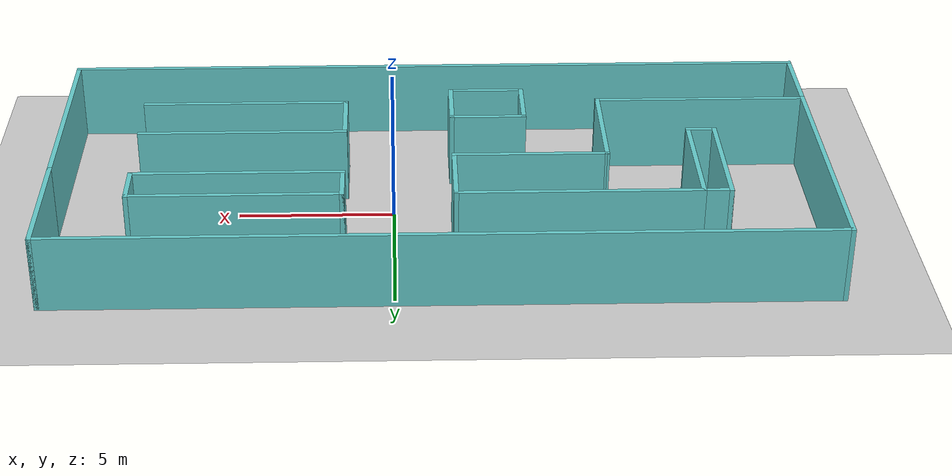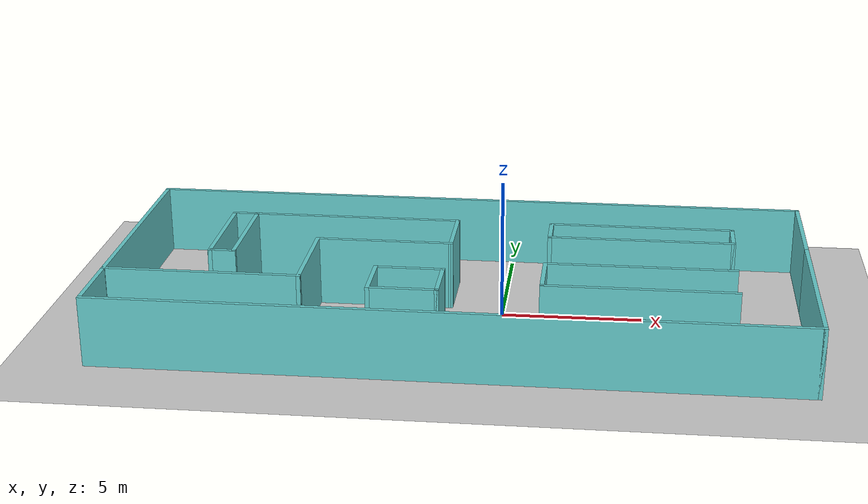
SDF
<sdf version='1.8'>
  <world name='default'>
    <physics name='1ms' type='ignored'>
      <max_step_size>0.001</max_step_size>
      <real_time_factor>1</real_time_factor>
      <real_time_update_rate>1000</real_time_update_rate>
    </physics>
    <light name='sun' type='directional'>
      <cast_shadows>1</cast_shadows>
      <pose>0 0 10 0 -0 0</pose>
      <diffuse>0.8 0.8 0.8 1</diffuse>
      <specular>0.2 0.2 0.2 1</specular>
      <attenuation>
        <range>1000</range>
        <constant>0.90000000000000002</constant>
        <linear>0.01</linear>
        <quadratic>0.001</quadratic>
      </attenuation>
      <direction>-0.5 0.1 -0.9</direction>
      <spot>
        <inner_angle>0</inner_angle>
        <outer_angle>0</outer_angle>
        <falloff>0</falloff>
      </spot>
    </light>
    <gravity>0 0 -9.8</gravity>
    <magnetic_field>6e-06 2.3e-05 -4.2e-05</magnetic_field>
    <atmosphere type='adiabatic'/>
    <scene>
      <ambient>0.4 0.4 0.4 1</ambient>
      <background>0.7 0.7 0.7 1</background>
      <shadows>1</shadows>
    </scene>
    <plugin name='__default__' filename='__default__'/>
    <model name='ground_plane'>
      <static>1</static>
      <link name='link'>
        <collision name='collision'>
          <geometry>
            <plane>
              <normal>0 0 1</normal>
              <size>100 100</size>
            </plane>
          </geometry>
          <surface>
            <friction>
              <ode/>
            </friction>
            <bounce/>
            <contact/>
          </surface>
        </collision>
        <visual name='visual'>
          <geometry>
            <plane>
              <normal>0 0 1</normal>
              <size>100 100</size>
            </plane>
          </geometry>
          <material>
            <ambient>0.8 0.8 0.8 1</ambient>
            <diffuse>0.8 0.8 0.8 1</diffuse>
            <specular>0.8 0.8 0.8 1</specular>
          </material>
          <plugin name='__default__' filename='__default__'/>
        </visual>
      </link>
      <plugin name='__default__' filename='__default__'/>
      <pose>0 0 0 0 -0 0</pose>
    </model>
    <model name='building2'>
      <pose>-1.435 -0.245 0 0 0 0</pose>
      <link name='Wall_0'>
        <collision name='Wall_0_Collision'>
          <geometry>
            <box>
              <size>5 0.15 2.5</size>
            </box>
          </geometry>
          <pose>0 0 1.25 0 -0 0</pose>
          <max_contacts>10</max_contacts>
          <surface>
            <contact>
              <ode/>
            </contact>
            <bounce/>
            <friction>
              <torsional>
                <ode/>
              </torsional>
              <ode/>
            </friction>
          </surface>
        </collision>
        <visual name='Wall_0_Visual'>
          <pose>0 0 1.25 0 -0 0</pose>
          <geometry>
            <box>
              <size>5 0.15 2.5</size>
            </box>
          </geometry>
          <material>
            <diffuse>0.4 0.8 0.8 1</diffuse>
            <specular>0.8 0.8 0.8 1</specular>
            <ambient>1 1 1 1</ambient>
          </material>
          <meta>
            <layer>0</layer>
          </meta>
          <plugin name='__default__' filename='__default__'/>
        </visual>
        <pose>-2.9 0.726036 0 0 -0 -0.000427</pose>
        <self_collide>0</self_collide>
        <enable_wind>0</enable_wind>
        <kinematic>0</kinematic>
      </link>
      <link name='Wall_10'>
        <collision name='Wall_10_Collision'>
          <geometry>
            <box>
              <size>2.5 0.15 2.5</size>
            </box>
          </geometry>
          <pose>0 0 1.25 0 -0 0</pose>
          <max_contacts>10</max_contacts>
          <surface>
            <contact>
              <ode/>
            </contact>
            <bounce/>
            <friction>
              <torsional>
                <ode/>
              </torsional>
              <ode/>
            </friction>
          </surface>
        </collision>
        <visual name='Wall_10_Visual'>
          <pose>0 0 1.25 0 -0 0</pose>
          <geometry>
            <box>
              <size>2.5 0.15 2.5</size>
            </box>
          </geometry>
          <material>
            <diffuse>0.4 0.8 0.8 1</diffuse>
            <specular>0.8 0.8 0.8 1</specular>
            <ambient>1 1 1 1</ambient>
          </material>
          <meta>
            <layer>0</layer>
          </meta>
          <plugin name='__default__' filename='__default__'/>
        </visual>
        <pose>-0.475 1.9 0 0 -0 1.5708</pose>
        <self_collide>0</self_collide>
        <enable_wind>0</enable_wind>
        <kinematic>0</kinematic>
      </link>
      <link name='Wall_11'>
        <collision name='Wall_11_Collision'>
          <geometry>
            <box>
              <size>7.75 0.15 2.5</size>
            </box>
          </geometry>
          <pose>0 0 1.25 0 -0 0</pose>
          <max_contacts>10</max_contacts>
          <surface>
            <contact>
              <ode/>
            </contact>
            <bounce/>
            <friction>
              <torsional>
                <ode/>
              </torsional>
              <ode/>
            </friction>
          </surface>
        </collision>
        <visual name='Wall_11_Visual'>
          <pose>0 0 1.25 0 -0 0</pose>
          <geometry>
            <box>
              <size>7.75 0.15 2.5</size>
            </box>
          </geometry>
          <material>
            <diffuse>0.4 0.8 0.8 1</diffuse>
            <specular>0.8 0.8 0.8 1</specular>
            <ambient>1 1 1 1</ambient>
          </material>
          <meta>
            <layer>0</layer>
          </meta>
          <plugin name='__default__' filename='__default__'/>
        </visual>
        <pose>-4.275 3.075 0 0 -0 3.14159</pose>
        <self_collide>0</self_collide>
        <enable_wind>0</enable_wind>
        <kinematic>0</kinematic>
      </link>
      <link name='Wall_12'>
        <collision name='Wall_12_Collision'>
          <geometry>
            <box>
              <size>4 0.15 2.5</size>
            </box>
          </geometry>
          <pose>0 0 1.25 0 -0 0</pose>
          <max_contacts>10</max_contacts>
          <surface>
            <contact>
              <ode/>
            </contact>
            <bounce/>
            <friction>
              <torsional>
                <ode/>
              </torsional>
              <ode/>
            </friction>
          </surface>
        </collision>
        <visual name='Wall_12_Visual'>
          <pose>0 0 1.25 0 -0 0</pose>
          <geometry>
            <box>
              <size>4 0.15 2.5</size>
            </box>
          </geometry>
          <material>
            <diffuse>0.4 0.8 0.8 1</diffuse>
            <specular>0.8 0.8 0.8 1</specular>
            <ambient>1 1 1 1</ambient>
          </material>
          <meta>
            <layer>0</layer>
          </meta>
          <plugin name='__default__' filename='__default__'/>
        </visual>
        <pose>-8.075 1.15 0 0 -0 -1.5708</pose>
        <self_collide>0</self_collide>
        <enable_wind>0</enable_wind>
        <kinematic>0</kinematic>
      </link>
      <link name='Wall_13'>
        <collision name='Wall_13_Collision'>
          <geometry>
            <box>
              <size>1 0.15 2.5</size>
            </box>
          </geometry>
          <pose>0 0 1.25 0 -0 0</pose>
          <max_contacts>10</max_contacts>
          <surface>
            <contact>
              <ode/>
            </contact>
            <bounce/>
            <friction>
              <torsional>
                <ode/>
              </torsional>
              <ode/>
            </friction>
          </surface>
        </collision>
        <visual name='Wall_13_Visual'>
          <pose>0 0 1.25 0 -0 0</pose>
          <geometry>
            <box>
              <size>1 0.15 2.5</size>
            </box>
          </geometry>
          <material>
            <diffuse>0.4 0.8 0.8 1</diffuse>
            <specular>0.8 0.8 0.8 1</specular>
            <ambient>1 1 1 1</ambient>
          </material>
          <meta>
            <layer>0</layer>
          </meta>
          <plugin name='__default__' filename='__default__'/>
        </visual>
        <pose>-8.5 -0.775 0 0 -0 3.14159</pose>
        <self_collide>0</self_collide>
        <enable_wind>0</enable_wind>
        <kinematic>0</kinematic>
      </link>
      <link name='Wall_14'>
        <collision name='Wall_14_Collision'>
          <geometry>
            <box>
              <size>4 0.15 2.5</size>
            </box>
          </geometry>
          <pose>0 0 1.25 0 -0 0</pose>
          <max_contacts>10</max_contacts>
          <surface>
            <contact>
              <ode/>
            </contact>
            <bounce/>
            <friction>
              <torsional>
                <ode/>
              </torsional>
              <ode/>
            </friction>
          </surface>
        </collision>
        <visual name='Wall_14_Visual'>
          <pose>0 0 1.25 0 -0 0</pose>
          <geometry>
            <box>
              <size>4 0.15 2.5</size>
            </box>
          </geometry>
          <material>
            <diffuse>0.4 0.8 0.8 1</diffuse>
            <specular>0.8 0.8 0.8 1</specular>
            <ambient>1 1 1 1</ambient>
          </material>
          <meta>
            <layer>0</layer>
          </meta>
          <plugin name='__default__' filename='__default__'/>
        </visual>
        <pose>-8.925 1.15 0 0 -0 1.5708</pose>
        <self_collide>0</self_collide>
        <enable_wind>0</enable_wind>
        <kinematic>0</kinematic>
      </link>
      <link name='Wall_15'>
        <collision name='Wall_15_Collision'>
          <geometry>
            <box>
              <size>1 0.15 2.5</size>
            </box>
          </geometry>
          <pose>0 0 1.25 0 -0 0</pose>
          <max_contacts>10</max_contacts>
          <surface>
            <contact>
              <ode/>
            </contact>
            <bounce/>
            <friction>
              <torsional>
                <ode/>
              </torsional>
              <ode/>
            </friction>
          </surface>
        </collision>
        <visual name='Wall_15_Visual'>
          <pose>0 0 1.25 0 -0 0</pose>
          <geometry>
            <box>
              <size>1 0.15 2.5</size>
            </box>
          </geometry>
          <material>
            <diffuse>0.4 0.8 0.8 1</diffuse>
            <specular>0.8 0.8 0.8 1</specular>
            <ambient>1 1 1 1</ambient>
          </material>
          <meta>
            <layer>0</layer>
          </meta>
          <plugin name='__default__' filename='__default__'/>
        </visual>
        <pose>-8.5 3.075 0 0 -0 0</pose>
        <self_collide>0</self_collide>
        <enable_wind>0</enable_wind>
        <kinematic>0</kinematic>
      </link>
      <link name='Wall_17'>
        <collision name='Wall_17_Collision'>
          <geometry>
            <box>
              <size>8.49793 0.15 2.5</size>
            </box>
          </geometry>
          <pose>0 0 1.25 0 -0 0</pose>
          <max_contacts>10</max_contacts>
          <surface>
            <contact>
              <ode/>
            </contact>
            <bounce/>
            <friction>
              <torsional>
                <ode/>
              </torsional>
              <ode/>
            </friction>
          </surface>
        </collision>
        <visual name='Wall_17_Visual'>
          <pose>0 0 1.25 0 -0 0</pose>
          <geometry>
            <box>
              <size>8.49793 0.15 2.5</size>
            </box>
          </geometry>
          <material>
            <diffuse>0.4 0.8 0.8 1</diffuse>
            <specular>0.8 0.8 0.8 1</specular>
            <ambient>1 1 1 1</ambient>
          </material>
          <meta>
            <layer>0</layer>
          </meta>
          <plugin name='__default__' filename='__default__'/>
        </visual>
        <pose>-12.175 1.30104 0 0 -0 1.5708</pose>
        <self_collide>0</self_collide>
        <enable_wind>0</enable_wind>
        <kinematic>0</kinematic>
      </link>
      <link name='Wall_18'>
        <collision name='Wall_18_Collision'>
          <geometry>
            <box>
              <size>24.5 0.15 2.5</size>
            </box>
          </geometry>
          <pose>0 0 1.25 0 -0 0</pose>
          <max_contacts>10</max_contacts>
          <surface>
            <contact>
              <ode/>
            </contact>
            <bounce/>
            <friction>
              <torsional>
                <ode/>
              </torsional>
              <ode/>
            </friction>
          </surface>
        </collision>
        <visual name='Wall_18_Visual'>
          <pose>0 0 1.25 0 -0 0</pose>
          <geometry>
            <box>
              <size>24.5 0.15 2.5</size>
            </box>
          </geometry>
          <material>
            <diffuse>0.4 0.8 0.8 1</diffuse>
            <specular>0.8 0.8 0.8 1</specular>
            <ambient>1 1 1 1</ambient>
          </material>
          <meta>
            <layer>0</layer>
          </meta>
          <plugin name='__default__' filename='__default__'/>
        </visual>
        <pose>0 5.475 0 0 -0 0</pose>
        <self_collide>0</self_collide>
        <enable_wind>0</enable_wind>
        <kinematic>0</kinematic>
      </link>
      <link name='Wall_19'>
        <collision name='Wall_19_Collision'>
          <geometry>
            <box>
              <size>4.25 0.15 2.5</size>
            </box>
          </geometry>
          <pose>0 0 1.25 0 -0 0</pose>
          <max_contacts>10</max_contacts>
          <surface>
            <contact>
              <ode/>
            </contact>
            <bounce/>
            <friction>
              <torsional>
                <ode/>
              </torsional>
              <ode/>
            </friction>
          </surface>
        </collision>
        <visual name='Wall_19_Visual'>
          <pose>0 0 1.25 0 -0 0</pose>
          <geometry>
            <box>
              <size>4.25 0.15 2.5</size>
            </box>
          </geometry>
          <material>
            <diffuse>0.4 0.8 0.8 1</diffuse>
            <specular>0.8 0.8 0.8 1</specular>
            <ambient>1 1 1 1</ambient>
          </material>
          <meta>
            <layer>0</layer>
          </meta>
          <plugin name='__default__' filename='__default__'/>
        </visual>
        <pose>12.175 3.425 0 0 -0 -1.5708</pose>
        <self_collide>0</self_collide>
        <enable_wind>0</enable_wind>
        <kinematic>0</kinematic>
      </link>
      <link name='Wall_22'>
        <collision name='Wall_22_Collision'>
          <geometry>
            <box>
              <size>2 0.15 2.5</size>
            </box>
          </geometry>
          <pose>0 0 1.25 0 -0 0</pose>
          <max_contacts>10</max_contacts>
          <surface>
            <contact>
              <ode/>
            </contact>
            <bounce/>
            <friction>
              <torsional>
                <ode/>
              </torsional>
              <ode/>
            </friction>
          </surface>
        </collision>
        <visual name='Wall_22_Visual'>
          <pose>0 0 1.25 0 -0 0</pose>
          <geometry>
            <box>
              <size>2 0.15 2.5</size>
            </box>
          </geometry>
          <material>
            <diffuse>0.4 0.8 0.8 1</diffuse>
            <specular>0.8 0.8 0.8 1</specular>
            <ambient>1 1 1 1</ambient>
          </material>
          <meta>
            <layer>0</layer>
          </meta>
          <plugin name='__default__' filename='__default__'/>
        </visual>
        <pose>-0.475 -2.7 0 0 -0 1.5708</pose>
        <self_collide>0</self_collide>
        <enable_wind>0</enable_wind>
        <kinematic>0</kinematic>
      </link>
      <link name='Wall_23'>
        <collision name='Wall_23_Collision'>
          <geometry>
            <box>
              <size>2.5 0.15 2.5</size>
            </box>
          </geometry>
          <pose>0 0 1.25 0 -0 0</pose>
          <max_contacts>10</max_contacts>
          <surface>
            <contact>
              <ode/>
            </contact>
            <bounce/>
            <friction>
              <torsional>
                <ode/>
              </torsional>
              <ode/>
            </friction>
          </surface>
        </collision>
        <visual name='Wall_23_Visual'>
          <pose>0 0 1.25 0 -0 0</pose>
          <geometry>
            <box>
              <size>2.5 0.15 2.5</size>
            </box>
          </geometry>
          <material>
            <diffuse>0.4 0.8 0.8 1</diffuse>
            <specular>0.8 0.8 0.8 1</specular>
            <ambient>1 1 1 1</ambient>
          </material>
          <meta>
            <layer>0</layer>
          </meta>
          <plugin name='__default__' filename='__default__'/>
        </visual>
        <pose>-1.65 -1.775 0 0 -0 3.14159</pose>
        <self_collide>0</self_collide>
        <enable_wind>0</enable_wind>
        <kinematic>0</kinematic>
      </link>
      <link name='Wall_24'>
        <collision name='Wall_24_Collision'>
          <geometry>
            <box>
              <size>2 0.15 2.5</size>
            </box>
          </geometry>
          <pose>0 0 1.25 0 -0 0</pose>
          <max_contacts>10</max_contacts>
          <surface>
            <contact>
              <ode/>
            </contact>
            <bounce/>
            <friction>
              <torsional>
                <ode/>
              </torsional>
              <ode/>
            </friction>
          </surface>
        </collision>
        <visual name='Wall_24_Visual'>
          <pose>0 0 1.25 0 -0 0</pose>
          <geometry>
            <box>
              <size>2 0.15 2.5</size>
            </box>
          </geometry>
          <material>
            <diffuse>0.4 0.8 0.8 1</diffuse>
            <specular>0.8 0.8 0.8 1</specular>
            <ambient>1 1 1 1</ambient>
          </material>
          <meta>
            <layer>0</layer>
          </meta>
          <plugin name='__default__' filename='__default__'/>
        </visual>
        <pose>-2.825 -2.7 0 0 -0 -1.5708</pose>
        <self_collide>0</self_collide>
        <enable_wind>0</enable_wind>
        <kinematic>0</kinematic>
      </link>
      <link name='Wall_26'>
        <collision name='Wall_26_Collision'>
          <geometry>
            <box>
              <size>2.5 0.15 2.5</size>
            </box>
          </geometry>
          <pose>0 0 1.25 0 -0 0</pose>
          <max_contacts>10</max_contacts>
          <surface>
            <contact>
              <ode/>
            </contact>
            <bounce/>
            <friction>
              <torsional>
                <ode/>
              </torsional>
              <ode/>
            </friction>
          </surface>
        </collision>
        <visual name='Wall_26_Visual'>
          <pose>0 0 1.25 0 -0 0</pose>
          <geometry>
            <box>
              <size>2.5 0.15 2.5</size>
            </box>
          </geometry>
          <material>
            <diffuse>0.4 0.8 0.8 1</diffuse>
            <specular>0.8 0.8 0.8 1</specular>
            <ambient>1 1 1 1</ambient>
          </material>
          <meta>
            <layer>0</layer>
          </meta>
          <plugin name='__default__' filename='__default__'/>
        </visual>
        <pose>-1.65 -3.625 0 0 -0 0</pose>
        <self_collide>0</self_collide>
        <enable_wind>0</enable_wind>
        <kinematic>0</kinematic>
      </link>
      <link name='Wall_3'>
        <collision name='Wall_3_Collision'>
          <geometry>
            <box>
              <size>3.75 0.15 2.5</size>
            </box>
          </geometry>
          <pose>0 0 1.25 0 -0 0</pose>
          <max_contacts>10</max_contacts>
          <surface>
            <contact>
              <ode/>
            </contact>
            <bounce/>
            <friction>
              <torsional>
                <ode/>
              </torsional>
              <ode/>
            </friction>
          </surface>
        </collision>
        <visual name='Wall_3_Visual'>
          <pose>0 0 1.25 0 -0 0</pose>
          <geometry>
            <box>
              <size>3.75 0.15 2.5</size>
            </box>
          </geometry>
          <material>
            <diffuse>0.4 0.8 0.8 1</diffuse>
            <specular>0.8 0.8 0.8 1</specular>
            <ambient>1 1 1 1</ambient>
          </material>
          <meta>
            <layer>0</layer>
          </meta>
          <plugin name='__default__' filename='__default__'/>
        </visual>
        <pose>-5.325 -1.07293 0 0 -0 -1.5708</pose>
        <self_collide>0</self_collide>
        <enable_wind>0</enable_wind>
        <kinematic>0</kinematic>
      </link>
      <link name='Wall_33'>
        <collision name='Wall_33_Collision'>
          <geometry>
            <box>
              <size>6.75 0.15 2.5</size>
            </box>
          </geometry>
          <pose>0 0 1.25 0 -0 0</pose>
          <max_contacts>10</max_contacts>
          <surface>
            <contact>
              <ode/>
            </contact>
            <bounce/>
            <friction>
              <torsional>
                <ode/>
              </torsional>
              <ode/>
            </friction>
          </surface>
        </collision>
        <visual name='Wall_33_Visual'>
          <pose>0 0 1.25 0 -0 0</pose>
          <geometry>
            <box>
              <size>6.75 0.15 2.5</size>
            </box>
          </geometry>
          <material>
            <diffuse>0.4 0.8 0.8 1</diffuse>
            <specular>0.8 0.8 0.8 1</specular>
            <ambient>1 1 1 1</ambient>
          </material>
          <meta>
            <layer>0</layer>
          </meta>
          <plugin name='__default__' filename='__default__'/>
        </visual>
        <pose>6.325 3.075 0 0 -0 0</pose>
        <self_collide>0</self_collide>
        <enable_wind>0</enable_wind>
        <kinematic>0</kinematic>
      </link>
      <link name='Wall_35'>
        <collision name='Wall_35_Collision'>
          <geometry>
            <box>
              <size>6.75 0.15 2.5</size>
            </box>
          </geometry>
          <pose>0 0 1.25 0 -0 0</pose>
          <max_contacts>10</max_contacts>
          <surface>
            <contact>
              <ode/>
            </contact>
            <bounce/>
            <friction>
              <torsional>
                <ode/>
              </torsional>
              <ode/>
            </friction>
          </surface>
        </collision>
        <visual name='Wall_35_Visual'>
          <pose>0 0 1.25 0 -0 0</pose>
          <geometry>
            <box>
              <size>6.75 0.15 2.5</size>
            </box>
          </geometry>
          <material>
            <diffuse>0.4 0.8 0.8 1</diffuse>
            <specular>0.8 0.8 0.8 1</specular>
            <ambient>1 1 1 1</ambient>
          </material>
          <meta>
            <layer>0</layer>
          </meta>
          <plugin name='__default__' filename='__default__'/>
        </visual>
        <pose>6.30977 -0.863638 0 0 -0 3.14159</pose>
        <self_collide>0</self_collide>
        <enable_wind>0</enable_wind>
        <kinematic>0</kinematic>
      </link>
      <link name='Wall_36'>
        <collision name='Wall_36_Collision'>
          <geometry>
            <box>
              <size>2.12547 0.15 2.5</size>
            </box>
          </geometry>
          <pose>0 0 1.25 0 -0 0</pose>
          <max_contacts>10</max_contacts>
          <surface>
            <contact>
              <ode/>
            </contact>
            <bounce/>
            <friction>
              <torsional>
                <ode/>
              </torsional>
              <ode/>
            </friction>
          </surface>
        </collision>
        <visual name='Wall_36_Visual'>
          <pose>0 0 1.25 0 -0 0</pose>
          <geometry>
            <box>
              <size>2.12547 0.15 2.5</size>
            </box>
          </geometry>
          <material>
            <diffuse>0.4 0.8 0.8 1</diffuse>
            <specular>0.8 0.8 0.8 1</specular>
            <ambient>1 1 1 1</ambient>
          </material>
          <meta>
            <layer>0</layer>
          </meta>
          <plugin name='__default__' filename='__default__'/>
        </visual>
        <pose>3.00977 -1.85137 0 0 -0 -1.5708</pose>
        <self_collide>0</self_collide>
        <enable_wind>0</enable_wind>
        <kinematic>0</kinematic>
      </link>
      <link name='Wall_37'>
        <collision name='Wall_37_Collision'>
          <geometry>
            <box>
              <size>6.75 0.15 2.5</size>
            </box>
          </geometry>
          <pose>0 0 1.25 0 -0 0</pose>
          <max_contacts>10</max_contacts>
          <surface>
            <contact>
              <ode/>
            </contact>
            <bounce/>
            <friction>
              <torsional>
                <ode/>
              </torsional>
              <ode/>
            </friction>
          </surface>
        </collision>
        <visual name='Wall_37_Visual'>
          <pose>0 0 1.25 0 -0 0</pose>
          <geometry>
            <box>
              <size>6.75 0.15 2.5</size>
            </box>
          </geometry>
          <material>
            <diffuse>0.4 0.8 0.8 1</diffuse>
            <specular>0.8 0.8 0.8 1</specular>
            <ambient>1 1 1 1</ambient>
          </material>
          <meta>
            <layer>0</layer>
          </meta>
          <plugin name='__default__' filename='__default__'/>
        </visual>
        <pose>6.30977 -2.86224 0 0 -0 0</pose>
        <self_collide>0</self_collide>
        <enable_wind>0</enable_wind>
        <kinematic>0</kinematic>
      </link>
      <link name='Wall_39'>
        <collision name='Wall_39_Collision'>
          <geometry>
            <box>
              <size>1.5 0.15 2.5</size>
            </box>
          </geometry>
          <pose>0 0 1.25 0 -0 0</pose>
          <max_contacts>10</max_contacts>
          <surface>
            <contact>
              <ode/>
            </contact>
            <bounce/>
            <friction>
              <torsional>
                <ode/>
              </torsional>
              <ode/>
            </friction>
          </surface>
        </collision>
        <visual name='Wall_39_Visual'>
          <pose>0 0 1.25 0 -0 0</pose>
          <geometry>
            <box>
              <size>1.5 0.15 2.5</size>
            </box>
          </geometry>
          <material>
            <diffuse>0.4 0.8 0.8 1</diffuse>
            <specular>0.8 0.8 0.8 1</specular>
            <ambient>1 1 1 1</ambient>
          </material>
          <meta>
            <layer>0</layer>
          </meta>
          <plugin name='__default__' filename='__default__'/>
        </visual>
        <pose>3.025 2.4 0 0 -0 -1.5708</pose>
        <self_collide>0</self_collide>
        <enable_wind>0</enable_wind>
        <kinematic>0</kinematic>
      </link>
      <link name='Wall_4'>
        <collision name='Wall_4_Collision'>
          <geometry>
            <box>
              <size>7 0.15 2.5</size>
            </box>
          </geometry>
          <pose>0 0 1.25 0 -0 0</pose>
          <max_contacts>10</max_contacts>
          <surface>
            <contact>
              <ode/>
            </contact>
            <bounce/>
            <friction>
              <torsional>
                <ode/>
              </torsional>
              <ode/>
            </friction>
          </surface>
        </collision>
        <visual name='Wall_4_Visual'>
          <pose>0 0 1.25 0 -0 0</pose>
          <geometry>
            <box>
              <size>7 0.15 2.5</size>
            </box>
          </geometry>
          <material>
            <diffuse>0.4 0.8 0.8 1</diffuse>
            <specular>0.8 0.8 0.8 1</specular>
            <ambient>1 1 1 1</ambient>
          </material>
          <meta>
            <layer>0</layer>
          </meta>
          <plugin name='__default__' filename='__default__'/>
        </visual>
        <pose>-8.75 -2.85544 0 0 -0 3.14159</pose>
        <self_collide>0</self_collide>
        <enable_wind>0</enable_wind>
        <kinematic>0</kinematic>
      </link>
      <link name='Wall_40'>
        <collision name='Wall_40_Collision'>
          <geometry>
            <box>
              <size>6.75 0.15 2.5</size>
            </box>
          </geometry>
          <pose>0 0 1.25 0 -0 0</pose>
          <max_contacts>10</max_contacts>
          <surface>
            <contact>
              <ode/>
            </contact>
            <bounce/>
            <friction>
              <torsional>
                <ode/>
              </torsional>
              <ode/>
            </friction>
          </surface>
        </collision>
        <visual name='Wall_40_Visual'>
          <pose>0 0 1.25 0 -0 0</pose>
          <geometry>
            <box>
              <size>6.75 0.15 2.5</size>
            </box>
          </geometry>
          <material>
            <diffuse>0.4 0.8 0.8 1</diffuse>
            <specular>0.8 0.8 0.8 1</specular>
            <ambient>1 1 1 1</ambient>
          </material>
          <meta>
            <layer>0</layer>
          </meta>
          <plugin name='__default__' filename='__default__'/>
        </visual>
        <pose>6.325 1.725 0 0 -0 0</pose>
        <self_collide>0</self_collide>
        <enable_wind>0</enable_wind>
        <kinematic>0</kinematic>
      </link>
      <link name='Wall_41'>
        <collision name='Wall_41_Collision'>
          <geometry>
            <box>
              <size>1.5 0.15 2.5</size>
            </box>
          </geometry>
          <pose>0 0 1.25 0 -0 0</pose>
          <max_contacts>10</max_contacts>
          <surface>
            <contact>
              <ode/>
            </contact>
            <bounce/>
            <friction>
              <torsional>
                <ode/>
              </torsional>
              <ode/>
            </friction>
          </surface>
        </collision>
        <visual name='Wall_41_Visual'>
          <pose>0 0 1.25 0 -0 0</pose>
          <geometry>
            <box>
              <size>1.5 0.15 2.5</size>
            </box>
          </geometry>
          <material>
            <diffuse>0.4 0.8 0.8 1</diffuse>
            <specular>0.8 0.8 0.8 1</specular>
            <ambient>1 1 1 1</ambient>
          </material>
          <meta>
            <layer>0</layer>
          </meta>
          <plugin name='__default__' filename='__default__'/>
        </visual>
        <pose>9.625 2.4 0 0 -0 1.5708</pose>
        <self_collide>0</self_collide>
        <enable_wind>0</enable_wind>
        <kinematic>0</kinematic>
      </link>
      <link name='Wall_6'>
        <collision name='Wall_6_Collision'>
          <geometry>
            <box>
              <size>2.75207 0.15 2.5</size>
            </box>
          </geometry>
          <pose>0 0 1.25 0 -0 0</pose>
          <max_contacts>10</max_contacts>
          <surface>
            <contact>
              <ode/>
            </contact>
            <bounce/>
            <friction>
              <torsional>
                <ode/>
              </torsional>
              <ode/>
            </friction>
          </surface>
        </collision>
        <visual name='Wall_6_Visual'>
          <pose>0 0 1.25 0 -0 0</pose>
          <geometry>
            <box>
              <size>2.75207 0.15 2.5</size>
            </box>
          </geometry>
          <material>
            <diffuse>0.4 0.8 0.8 1</diffuse>
            <specular>0.8 0.8 0.8 1</specular>
            <ambient>1 1 1 1</ambient>
          </material>
          <meta>
            <layer>0</layer>
          </meta>
          <plugin name='__default__' filename='__default__'/>
        </visual>
        <pose>-12.175 -4.17396 0 0 -0 -1.5708</pose>
        <self_collide>0</self_collide>
        <enable_wind>0</enable_wind>
        <kinematic>0</kinematic>
      </link>
      <link name='Wall_7'>
        <collision name='Wall_7_Collision'>
          <geometry>
            <box>
              <size>24.5 0.15 2.5</size>
            </box>
          </geometry>
          <pose>0 0 1.25 0 -0 0</pose>
          <max_contacts>10</max_contacts>
          <surface>
            <contact>
              <ode/>
            </contact>
            <bounce/>
            <friction>
              <torsional>
                <ode/>
              </torsional>
              <ode/>
            </friction>
          </surface>
        </collision>
        <visual name='Wall_7_Visual'>
          <pose>0 0 1.25 0 -0 0</pose>
          <geometry>
            <box>
              <size>24.5 0.15 2.5</size>
            </box>
          </geometry>
          <material>
            <diffuse>0.4 0.8 0.8 1</diffuse>
            <specular>0.8 0.8 0.8 1</specular>
            <ambient>1 1 1 1</ambient>
          </material>
          <meta>
            <layer>0</layer>
          </meta>
          <plugin name='__default__' filename='__default__'/>
        </visual>
        <pose>0 -5.475 0 0 -0 0</pose>
        <self_collide>0</self_collide>
        <enable_wind>0</enable_wind>
        <kinematic>0</kinematic>
      </link>
      <link name='Wall_8'>
        <collision name='Wall_8_Collision'>
          <geometry>
            <box>
              <size>7 0.15 2.5</size>
            </box>
          </geometry>
          <pose>0 0 1.25 0 -0 0</pose>
          <max_contacts>10</max_contacts>
          <surface>
            <contact>
              <ode/>
            </contact>
            <bounce/>
            <friction>
              <torsional>
                <ode/>
              </torsional>
              <ode/>
            </friction>
          </surface>
        </collision>
        <visual name='Wall_8_Visual'>
          <pose>0 0 1.25 0 -0 0</pose>
          <geometry>
            <box>
              <size>7 0.15 2.5</size>
            </box>
          </geometry>
          <material>
            <diffuse>0.4 0.8 0.8 1</diffuse>
            <specular>0.8 0.8 0.8 1</specular>
            <ambient>1 1 1 1</ambient>
          </material>
          <meta>
            <layer>0</layer>
          </meta>
          <plugin name='__default__' filename='__default__'/>
        </visual>
        <pose>12.175 -2.05 0 0 -0 1.5708</pose>
        <self_collide>0</self_collide>
        <enable_wind>0</enable_wind>
        <kinematic>0</kinematic>
      </link>
      <static>1</static>
      <plugin name='__default__' filename='__default__'/>
    </model>
  </world>
</sdf>
